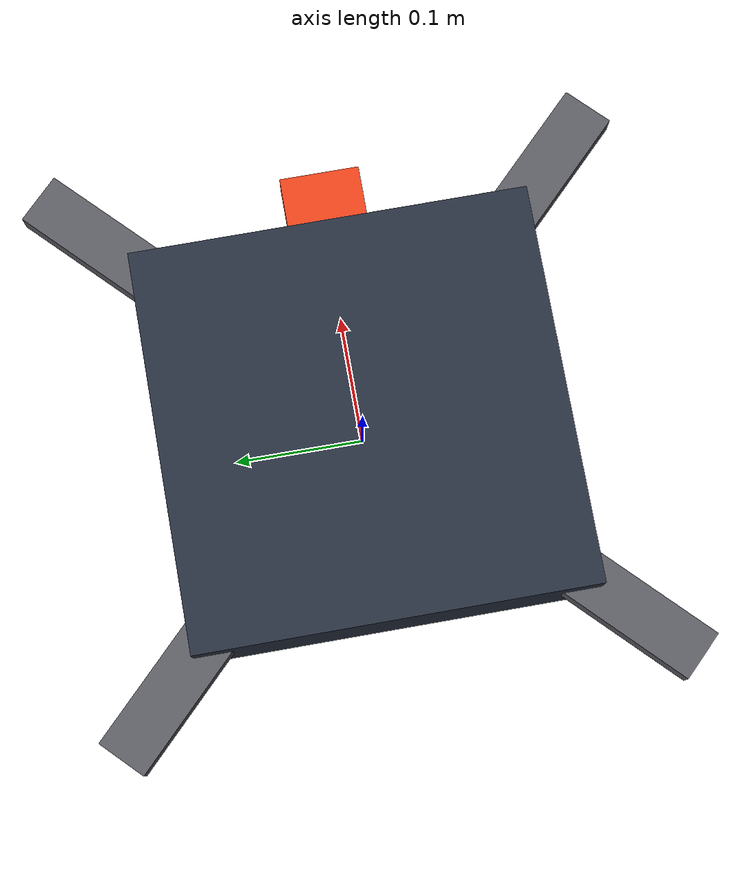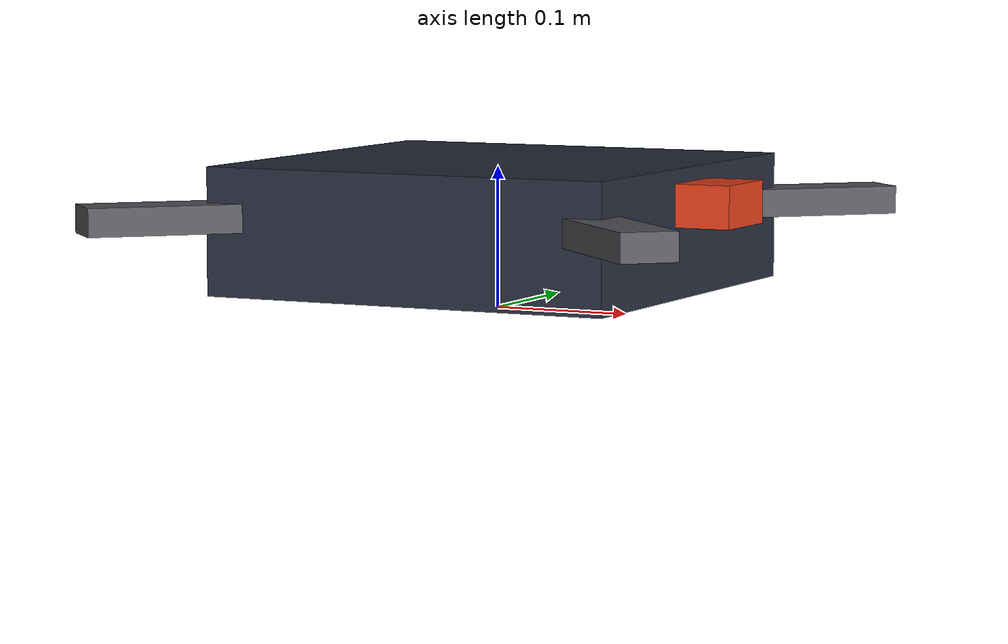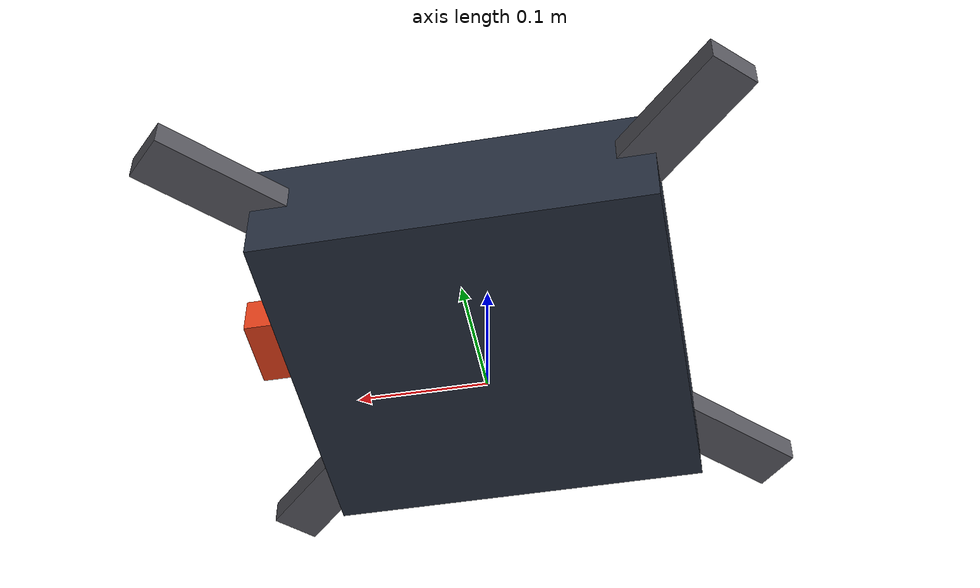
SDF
<?xml version="1.0"?>
<sdf version="1.9">
  <model name="scout_drone">
    <pose>0 0 0.06 0 0 0</pose>

    <link name="base_link">
      <gravity>false</gravity>

      <inertial>
        <mass>1.5</mass>
        <inertia>
          <ixx>0.0217</ixx><ixy>0</ixy><ixz>0</ixz>
          <iyy>0.0217</iyy><iyz>0</iyz>
          <izz>0.0400</izz>
        </inertia>
      </inertial>

      <visual name="body">
        <geometry><box><size>0.30 0.30 0.09</size></box></geometry>
        <material>
          <ambient>0.10 0.12 0.16 1</ambient>
          <diffuse>0.15 0.18 0.24 1</diffuse>
        </material>
      </visual>
      <visual name="arm_a">
        <pose>0 0 0.01 0 0 0.7853982</pose>
        <geometry><box><size>0.60 0.04 0.02</size></box></geometry>
        <material><diffuse>0.35 0.35 0.38 1</diffuse></material>
      </visual>
      <visual name="arm_b">
        <pose>0 0 0.01 0 0 -0.7853982</pose>
        <geometry><box><size>0.60 0.04 0.02</size></box></geometry>
        <material><diffuse>0.35 0.35 0.38 1</diffuse></material>
      </visual>
      <!-- Bright nose marker: makes heading obvious in the Gazebo GUI. -->
      <visual name="nose">
        <pose>0.16 0 0.02 0 0 0</pose>
        <geometry><box><size>0.06 0.06 0.03</size></box></geometry>
        <material><diffuse>0.90 0.25 0.10 1</diffuse></material>
      </visual>

      <collision name="body_collision">
        <geometry><box><size>0.30 0.30 0.09</size></box></geometry>
      </collision>

      <sensor name="down_camera" type="camera">
        <pose>0.10 0 -0.08 0 0.5235988 0</pose>
        <always_on>1</always_on>
        <update_rate>6</update_rate>
        <visualize>false</visualize>
        <topic>/drone/camera/image</topic>
        <!-- Pin the published frame_id instead of letting gz derive a scoped
             sensor name: qr_detector_node looks this frame up in TF. -->
        <gz_frame_id>drone/camera_optical_frame</gz_frame_id>
        <camera>
          <!-- Must match drone.camera in config/mission.yaml. -->
          <horizontal_fov>1.047</horizontal_fov>
          <image>
            <width>1280</width>
            <height>960</height>
            <format>R8G8B8</format>
          </image>
          <clip><near>0.1</near><far>60</far></clip>
          <optical_frame_id>drone/camera_optical_frame</optical_frame_id>
        </camera>
      </sensor>

    </link>

    <!-- Body-frame twist input. drone_explorer_node rotates its map-frame
         velocity into the body frame before publishing here. -->
    <plugin filename="gz-sim-velocity-control-system"
            name="gz::sim::systems::VelocityControl">
      <topic>/model/scout_drone/cmd_vel</topic>
    </plugin>

    <plugin filename="gz-sim-odometry-publisher-system"
            name="gz::sim::systems::OdometryPublisher">
      <odom_frame>drone/odom</odom_frame>
      <robot_base_frame>drone/base_link</robot_base_frame>
      <odom_topic>/model/scout_drone/odometry</odom_topic>
      <tf_topic>/model/scout_drone/tf</tf_topic>
      <dimensions>3</dimensions>
      <odom_publish_frequency>50</odom_publish_frequency>
    </plugin>
  </model>
</sdf>
